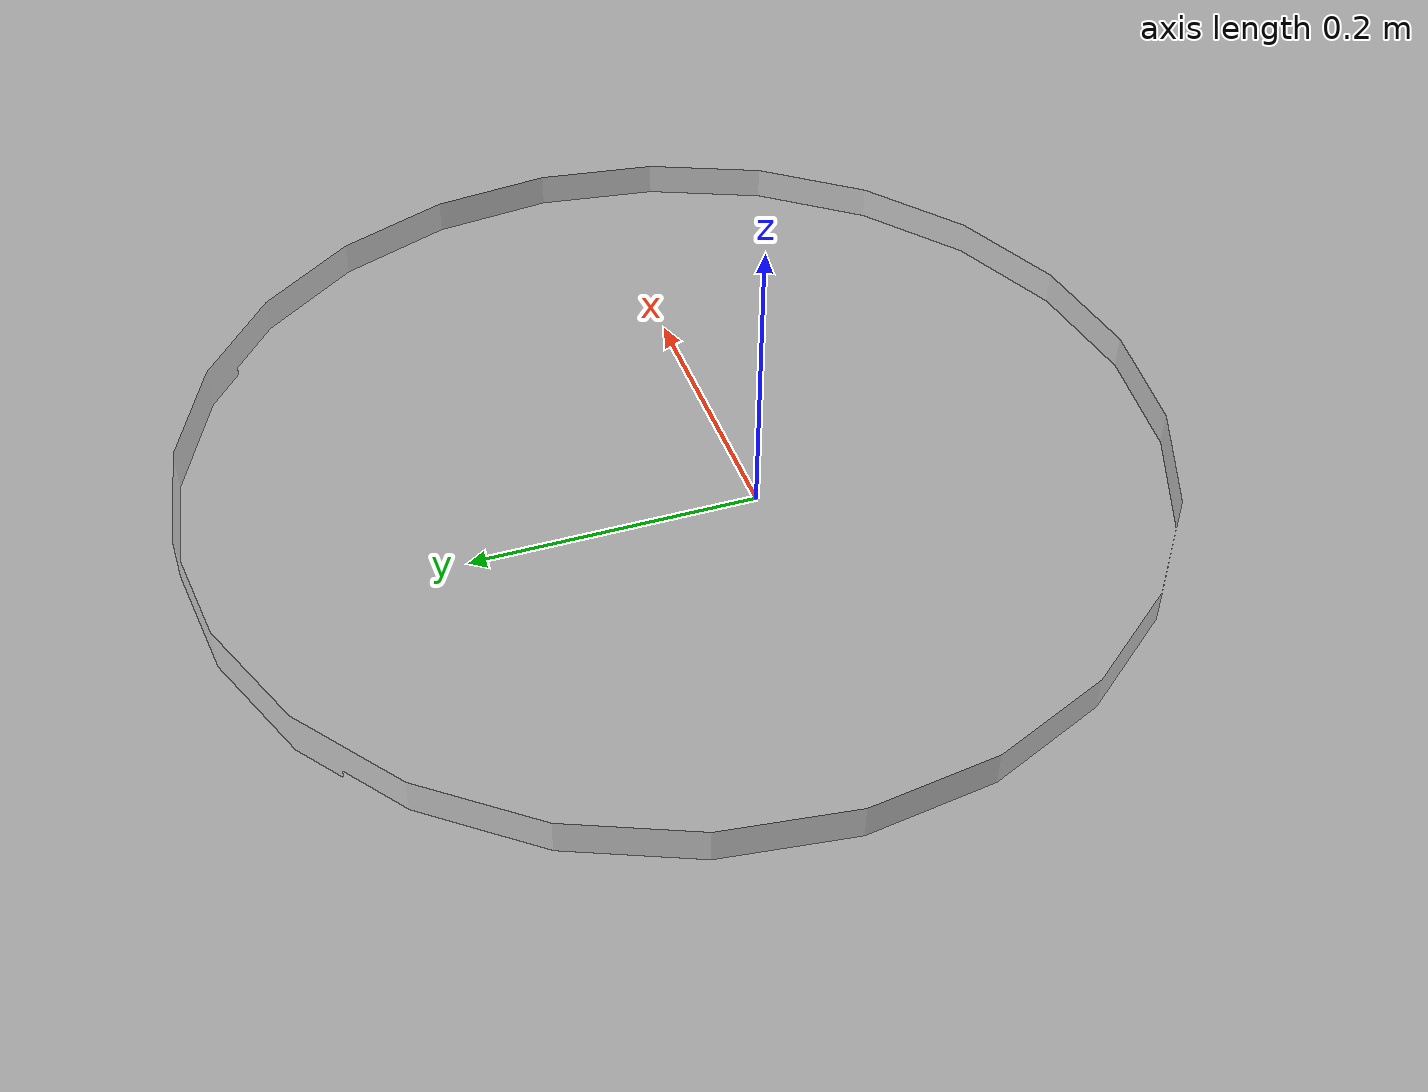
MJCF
<mujoco model="original-60">
  <default>
    <default class="visual">
      <geom group="2" type="mesh" contype="0" conaffinity="0"/>
    </default>
    <default class="collision">
      <geom group="3" type="mesh"/>
    </default>
  </default>
  <asset>
    <material name="material_0_0" specular="0.06666666666666667" shininess="0.03" rgba="0.8 0.8 0.8 1"/>
    <mesh file="original-60.obj"/>
  </asset>
  <worldbody>
    <body name="original-60">
      <geom material="material_0_0" mesh="original-60" class="visual"/>
      <geom mesh="original-60" class="collision"/>
    </body>
  </worldbody>
</mujoco>
